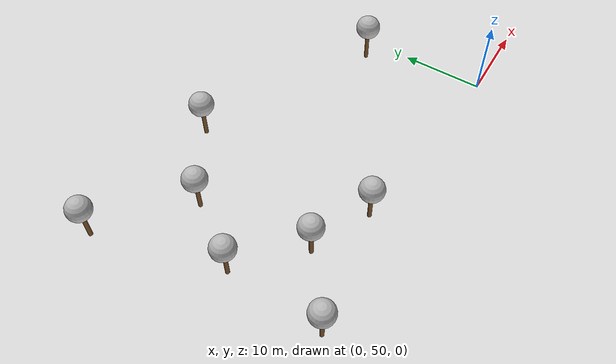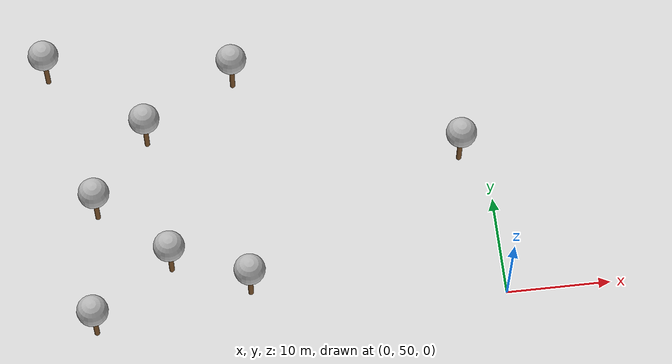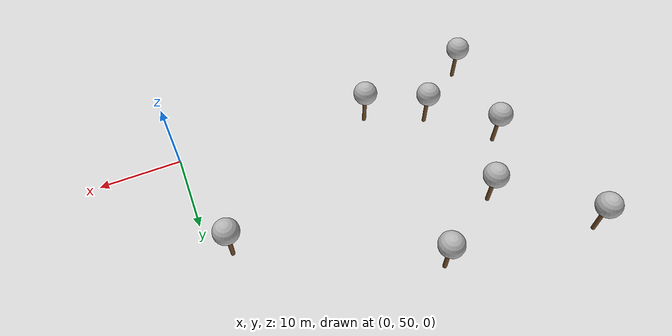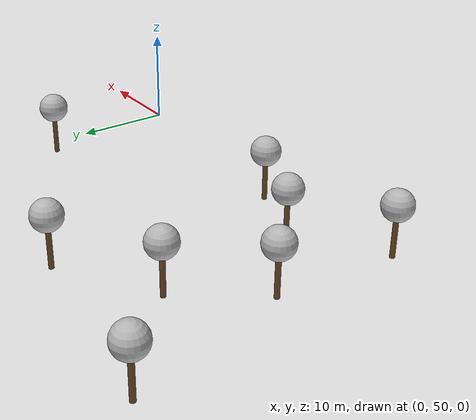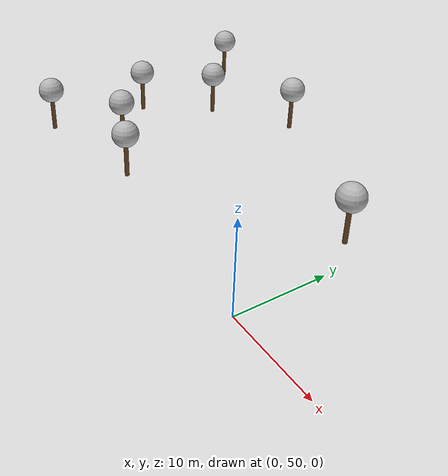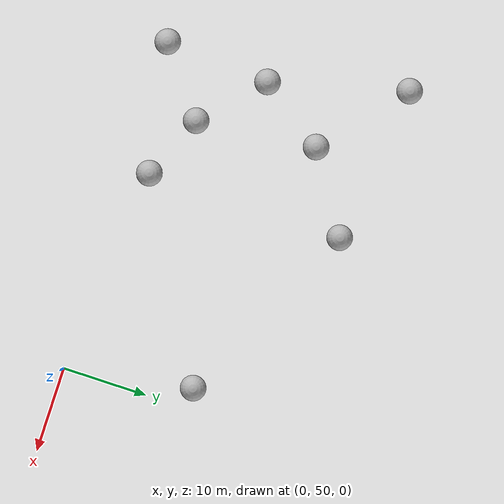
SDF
<sdf version="1.7">
 <world name="default">
  <model name="tree_simple_0_clone_0">
   <static>1</static>
   <link name="link">
    <pose>0 0 0.1 0 -0 0</pose>
    <inertial>
     <mass>666</mass>
     <inertia>
      <ixx>0.0861167</ixx>
      <ixy>0</ixy>
      <ixz>0</ixz>
      <iyy>0.0861167</iyy>
      <iyz>0</iyz>
      <izz>0.0861167</izz>
     </inertia>
    </inertial>
    <collision name="collision_trunk">
     <pose>0 0 2 0 -0 0</pose>
     <geometry><cylinder><radius>0.25</radius><length>4</length></cylinder></geometry>
     <surface>
      <contact>
       <poissons_ratio>0.347</poissons_ratio>
       <elastic_modulus>8.8e+09</elastic_modulus>
       <ode><kp>100000</kp><kd>100</kd><max_vel>100</max_vel><min_depth>0.001</min_depth></ode>
      </contact>
      <friction>
       <torsional>
        <coefficient>1</coefficient>
        <use_patch_radius>0</use_patch_radius>
        <surface_radius>0.01</surface_radius>
       </torsional>
      </friction>
     </surface>
    </collision>
    <collision name="collision_treetop">
     <pose>0 0 5.2 0 -0 0</pose>
     <geometry><sphere><radius>1.5</radius></sphere></geometry>
     <surface>
      <contact>
       <poissons_ratio>0.347</poissons_ratio>
       <elastic_modulus>8.8e+09</elastic_modulus>
       <ode><kp>100000</kp><kd>100</kd><max_vel>100</max_vel><min_depth>0.001</min_depth></ode>
      </contact>
      <friction>
       <torsional>
        <coefficient>1</coefficient>
        <use_patch_radius>0</use_patch_radius>
        <surface_radius>0.01</surface_radius>
       </torsional>
      </friction>
     </surface>
    </collision>
    <visual name="trunk">
     <pose>0 0 2 0 -0 0</pose>
     <geometry><cylinder><radius>0.25</radius><length>4</length></cylinder></geometry>
     <material>
      <script>
       <uri>model://tree_simple/scripts</uri>
       <uri>model://tree_simple/materials/textures</uri>
       <name>TreeSimple/Trunk</name>
      </script>
     </material>
    </visual>
    <visual name="treetop">
     <pose>0 0 5.2 0 -0 0</pose>
     <geometry><sphere><radius>1.5</radius></sphere></geometry>
     <material>
      <script>
       <uri>model://tree_simple/scripts</uri>
       <uri>model://tree_simple/materials/textures</uri>
       <name>TreeSimple/Treetop</name>
      </script>
     </material>
    </visual>
   </link>
   <pose>-2.64272 64.897 0 0 -0 0</pose>
  </model>
  <model name="tree_simple_0_clone_0_clone_clone">
   <static>1</static>
   <link name="link">
    <pose>0 0 0.1 0 -0 0</pose>
    <inertial>
     <mass>666</mass>
     <inertia>
      <ixx>0.0861167</ixx>
      <ixy>0</ixy>
      <ixz>0</ixz>
      <iyy>0.0861167</iyy>
      <iyz>0</iyz>
      <izz>0.0861167</izz>
     </inertia>
    </inertial>
    <collision name="collision_trunk">
     <pose>0 0 2 0 -0 0</pose>
     <geometry><cylinder><radius>0.25</radius><length>4</length></cylinder></geometry>
     <surface>
      <contact>
       <poissons_ratio>0.347</poissons_ratio>
       <elastic_modulus>8.8e+09</elastic_modulus>
       <ode><kp>100000</kp><kd>100</kd><max_vel>100</max_vel><min_depth>0.001</min_depth></ode>
      </contact>
      <friction>
       <torsional>
        <coefficient>1</coefficient>
        <use_patch_radius>0</use_patch_radius>
        <surface_radius>0.01</surface_radius>
       </torsional>
      </friction>
     </surface>
    </collision>
    <collision name="collision_treetop">
     <pose>0 0 5.2 0 -0 0</pose>
     <geometry><sphere><radius>1.5</radius></sphere></geometry>
     <surface>
      <contact>
       <poissons_ratio>0.347</poissons_ratio>
       <elastic_modulus>8.8e+09</elastic_modulus>
       <ode><kp>100000</kp><kd>100</kd><max_vel>100</max_vel><min_depth>0.001</min_depth></ode>
      </contact>
      <friction>
       <torsional>
        <coefficient>1</coefficient>
        <use_patch_radius>0</use_patch_radius>
        <surface_radius>0.01</surface_radius>
       </torsional>
      </friction>
     </surface>
    </collision>
    <visual name="trunk">
     <pose>0 0 2 0 -0 0</pose>
     <geometry><cylinder><radius>0.25</radius><length>4</length></cylinder></geometry>
     <material>
      <script>
       <uri>model://tree_simple/scripts</uri>
       <uri>model://tree_simple/materials/textures</uri>
       <name>TreeSimple/Trunk</name>
      </script>
     </material>
    </visual>
    <visual name="treetop">
     <pose>0 0 5.2 0 -0 0</pose>
     <geometry><sphere><radius>1.5</radius></sphere></geometry>
     <material>
      <script>
       <uri>model://tree_simple/scripts</uri>
       <uri>model://tree_simple/materials/textures</uri>
       <name>TreeSimple/Treetop</name>
      </script>
     </material>
    </visual>
   </link>
   <pose>-38.4069 62.1845 0 0 -0 0</pose>
  </model>
  <model name="tree_simple_0_clone_0_clone_clone_8">
   <static>1</static>
   <link name="link">
    <pose>0 0 0.1 0 -0 0</pose>
    <inertial>
     <mass>666</mass>
     <inertia>
      <ixx>0.0861167</ixx>
      <ixy>0</ixy>
      <ixz>0</ixz>
      <iyy>0.0861167</iyy>
      <iyz>0</iyz>
      <izz>0.0861167</izz>
     </inertia>
    </inertial>
    <collision name="collision_trunk">
     <pose>0 0 2 0 -0 0</pose>
     <geometry><cylinder><radius>0.25</radius><length>4</length></cylinder></geometry>
     <surface>
      <contact>
       <poissons_ratio>0.347</poissons_ratio>
       <elastic_modulus>8.8e+09</elastic_modulus>
       <ode><kp>100000</kp><kd>100</kd><max_vel>100</max_vel><min_depth>0.001</min_depth></ode>
      </contact>
      <friction>
       <torsional>
        <coefficient>1</coefficient>
        <use_patch_radius>0</use_patch_radius>
        <surface_radius>0.01</surface_radius>
       </torsional>
      </friction>
     </surface>
    </collision>
    <collision name="collision_treetop">
     <pose>0 0 5.2 0 -0 0</pose>
     <geometry><sphere><radius>1.5</radius></sphere></geometry>
     <surface>
      <contact>
       <poissons_ratio>0.347</poissons_ratio>
       <elastic_modulus>8.8e+09</elastic_modulus>
       <ode><kp>100000</kp><kd>100</kd><max_vel>100</max_vel><min_depth>0.001</min_depth></ode>
      </contact>
      <friction>
       <torsional>
        <coefficient>1</coefficient>
        <use_patch_radius>0</use_patch_radius>
        <surface_radius>0.01</surface_radius>
       </torsional>
      </friction>
     </surface>
    </collision>
    <visual name="trunk">
     <pose>0 0 2 0 -0 0</pose>
     <geometry><cylinder><radius>0.25</radius><length>4</length></cylinder></geometry>
     <material>
      <script>
       <uri>model://tree_simple/scripts</uri>
       <uri>model://tree_simple/materials/textures</uri>
       <name>TreeSimple/Trunk</name>
      </script>
     </material>
    </visual>
    <visual name="treetop">
     <pose>0 0 5.2 0 -0 0</pose>
     <geometry><sphere><radius>1.5</radius></sphere></geometry>
     <material>
      <script>
       <uri>model://tree_simple/scripts</uri>
       <uri>model://tree_simple/materials/textures</uri>
       <name>TreeSimple/Treetop</name>
      </script>
     </material>
    </visual>
   </link>
   <pose>-31.695 55.8135 0 0 -0 0</pose>
  </model>
  <model name="tree_simple_0_clone_0_clone_clone_10">
   <static>1</static>
   <link name="link">
    <pose>0 0 0.1 0 -0 0</pose>
    <inertial>
     <mass>666</mass>
     <inertia>
      <ixx>0.0861167</ixx>
      <ixy>0</ixy>
      <ixz>0</ixz>
      <iyy>0.0861167</iyy>
      <iyz>0</iyz>
      <izz>0.0861167</izz>
     </inertia>
    </inertial>
    <collision name="collision_trunk">
     <pose>0 0 2 0 -0 0</pose>
     <geometry><cylinder><radius>0.25</radius><length>4</length></cylinder></geometry>
     <surface>
      <contact>
       <poissons_ratio>0.347</poissons_ratio>
       <elastic_modulus>8.8e+09</elastic_modulus>
       <ode><kp>100000</kp><kd>100</kd><max_vel>100</max_vel><min_depth>0.001</min_depth></ode>
      </contact>
      <friction>
       <torsional>
        <coefficient>1</coefficient>
        <use_patch_radius>0</use_patch_radius>
        <surface_radius>0.01</surface_radius>
       </torsional>
      </friction>
     </surface>
    </collision>
    <collision name="collision_treetop">
     <pose>0 0 5.2 0 -0 0</pose>
     <geometry><sphere><radius>1.5</radius></sphere></geometry>
     <surface>
      <contact>
       <poissons_ratio>0.347</poissons_ratio>
       <elastic_modulus>8.8e+09</elastic_modulus>
       <ode><kp>100000</kp><kd>100</kd><max_vel>100</max_vel><min_depth>0.001</min_depth></ode>
      </contact>
      <friction>
       <torsional>
        <coefficient>1</coefficient>
        <use_patch_radius>0</use_patch_radius>
        <surface_radius>0.01</surface_radius>
       </torsional>
      </friction>
     </surface>
    </collision>
    <visual name="trunk">
     <pose>0 0 2 0 -0 0</pose>
     <geometry><cylinder><radius>0.25</radius><length>4</length></cylinder></geometry>
     <material>
      <script>
       <uri>model://tree_simple/scripts</uri>
       <uri>model://tree_simple/materials/textures</uri>
       <name>TreeSimple/Trunk</name>
      </script>
     </material>
    </visual>
    <visual name="treetop">
     <pose>0 0 5.2 0 -0 0</pose>
     <geometry><sphere><radius>1.5</radius></sphere></geometry>
     <material>
      <script>
       <uri>model://tree_simple/scripts</uri>
       <uri>model://tree_simple/materials/textures</uri>
       <name>TreeSimple/Treetop</name>
      </script>
     </material>
    </visual>
   </link>
   <pose>-33.0567 69.7272 0 0 -0 0</pose>
  </model>
  <model name="tree_simple_0_clone_0_clone_clone_11">
   <static>1</static>
   <link name="link">
    <pose>0 0 0.1 0 -0 0</pose>
    <inertial>
     <mass>666</mass>
     <inertia>
      <ixx>0.0861167</ixx>
      <ixy>0</ixy>
      <ixz>0</ixz>
      <iyy>0.0861167</iyy>
      <iyz>0</iyz>
      <izz>0.0861167</izz>
     </inertia>
    </inertial>
    <collision name="collision_trunk">
     <pose>0 0 2 0 -0 0</pose>
     <geometry><cylinder><radius>0.25</radius><length>4</length></cylinder></geometry>
     <surface>
      <contact>
       <poissons_ratio>0.347</poissons_ratio>
       <elastic_modulus>8.8e+09</elastic_modulus>
       <ode><kp>100000</kp><kd>100</kd><max_vel>100</max_vel><min_depth>0.001</min_depth></ode>
      </contact>
      <friction>
       <torsional>
        <coefficient>1</coefficient>
        <use_patch_radius>0</use_patch_radius>
        <surface_radius>0.01</surface_radius>
       </torsional>
      </friction>
     </surface>
    </collision>
    <collision name="collision_treetop">
     <pose>0 0 5.2 0 -0 0</pose>
     <geometry><sphere><radius>1.5</radius></sphere></geometry>
     <surface>
      <contact>
       <poissons_ratio>0.347</poissons_ratio>
       <elastic_modulus>8.8e+09</elastic_modulus>
       <ode><kp>100000</kp><kd>100</kd><max_vel>100</max_vel><min_depth>0.001</min_depth></ode>
      </contact>
      <friction>
       <torsional>
        <coefficient>1</coefficient>
        <use_patch_radius>0</use_patch_radius>
        <surface_radius>0.01</surface_radius>
       </torsional>
      </friction>
     </surface>
    </collision>
    <visual name="trunk">
     <pose>0 0 2 0 -0 0</pose>
     <geometry><cylinder><radius>0.25</radius><length>4</length></cylinder></geometry>
     <material>
      <script>
       <uri>model://tree_simple/scripts</uri>
       <uri>model://tree_simple/materials/textures</uri>
       <name>TreeSimple/Trunk</name>
      </script>
     </material>
    </visual>
    <visual name="treetop">
     <pose>0 0 5.2 0 -0 0</pose>
     <geometry><sphere><radius>1.5</radius></sphere></geometry>
     <material>
      <script>
       <uri>model://tree_simple/scripts</uri>
       <uri>model://tree_simple/materials/textures</uri>
       <name>TreeSimple/Treetop</name>
      </script>
     </material>
    </visual>
   </link>
   <pose>-24.0671 75.4676 0 0 -0 0</pose>
  </model>
  <model name="tree_simple_0_clone_0_clone_clone_12">
   <static>1</static>
   <link name="link">
    <pose>0 0 0.1 0 -0 0</pose>
    <inertial>
     <mass>666</mass>
     <inertia>
      <ixx>0.0861167</ixx>
      <ixy>0</ixy>
      <ixz>0</ixz>
      <iyy>0.0861167</iyy>
      <iyz>0</iyz>
      <izz>0.0861167</izz>
     </inertia>
    </inertial>
    <collision name="collision_trunk">
     <pose>0 0 2 0 -0 0</pose>
     <geometry><cylinder><radius>0.25</radius><length>4</length></cylinder></geometry>
     <surface>
      <contact>
       <poissons_ratio>0.347</poissons_ratio>
       <elastic_modulus>8.8e+09</elastic_modulus>
       <ode><kp>100000</kp><kd>100</kd><max_vel>100</max_vel><min_depth>0.001</min_depth></ode>
      </contact>
      <friction>
       <torsional>
        <coefficient>1</coefficient>
        <use_patch_radius>0</use_patch_radius>
        <surface_radius>0.01</surface_radius>
       </torsional>
      </friction>
     </surface>
    </collision>
    <collision name="collision_treetop">
     <pose>0 0 5.2 0 -0 0</pose>
     <geometry><sphere><radius>1.5</radius></sphere></geometry>
     <surface>
      <contact>
       <poissons_ratio>0.347</poissons_ratio>
       <elastic_modulus>8.8e+09</elastic_modulus>
       <ode><kp>100000</kp><kd>100</kd><max_vel>100</max_vel><min_depth>0.001</min_depth></ode>
      </contact>
      <friction>
       <torsional>
        <coefficient>1</coefficient>
        <use_patch_radius>0</use_patch_radius>
        <surface_radius>0.01</surface_radius>
       </torsional>
      </friction>
     </surface>
    </collision>
    <visual name="trunk">
     <pose>0 0 2 0 -0 0</pose>
     <geometry><cylinder><radius>0.25</radius><length>4</length></cylinder></geometry>
     <material>
      <script>
       <uri>model://tree_simple/scripts</uri>
       <uri>model://tree_simple/materials/textures</uri>
       <name>TreeSimple/Trunk</name>
      </script>
     </material>
    </visual>
    <visual name="treetop">
     <pose>0 0 5.2 0 -0 0</pose>
     <geometry><sphere><radius>1.5</radius></sphere></geometry>
     <material>
      <script>
       <uri>model://tree_simple/scripts</uri>
       <uri>model://tree_simple/materials/textures</uri>
       <name>TreeSimple/Treetop</name>
      </script>
     </material>
    </visual>
   </link>
   <pose>-24.3636 52.5973 0 0 -0 0</pose>
  </model>
  <model name="tree_simple_0_clone_0_clone_clone_11_clone">
   <static>1</static>
   <link name="link">
    <pose>0 0 0.1 0 -0 0</pose>
    <inertial>
     <mass>666</mass>
     <inertia>
      <ixx>0.0861167</ixx>
      <ixy>0</ixy>
      <ixz>0</ixz>
      <iyy>0.0861167</iyy>
      <iyz>0</iyz>
      <izz>0.0861167</izz>
     </inertia>
    </inertial>
    <collision name="collision_trunk">
     <pose>0 0 2 0 -0 0</pose>
     <geometry><cylinder><radius>0.25</radius><length>4</length></cylinder></geometry>
     <surface>
      <contact>
       <poissons_ratio>0.347</poissons_ratio>
       <elastic_modulus>8.8e+09</elastic_modulus>
       <ode><kp>100000</kp><kd>100</kd><max_vel>100</max_vel><min_depth>0.001</min_depth></ode>
      </contact>
      <friction>
       <torsional>
        <coefficient>1</coefficient>
        <use_patch_radius>0</use_patch_radius>
        <surface_radius>0.01</surface_radius>
       </torsional>
      </friction>
     </surface>
    </collision>
    <collision name="collision_treetop">
     <pose>0 0 5.2 0 -0 0</pose>
     <geometry><sphere><radius>1.5</radius></sphere></geometry>
     <surface>
      <contact>
       <poissons_ratio>0.347</poissons_ratio>
       <elastic_modulus>8.8e+09</elastic_modulus>
       <ode><kp>100000</kp><kd>100</kd><max_vel>100</max_vel><min_depth>0.001</min_depth></ode>
      </contact>
      <friction>
       <torsional>
        <coefficient>1</coefficient>
        <use_patch_radius>0</use_patch_radius>
        <surface_radius>0.01</surface_radius>
       </torsional>
      </friction>
     </surface>
    </collision>
    <visual name="trunk">
     <pose>0 0 2 0 -0 0</pose>
     <geometry><cylinder><radius>0.25</radius><length>4</length></cylinder></geometry>
     <material>
      <script>
       <uri>model://tree_simple/scripts</uri>
       <uri>model://tree_simple/materials/textures</uri>
       <name>TreeSimple/Trunk</name>
      </script>
     </material>
    </visual>
    <visual name="treetop">
     <pose>0 0 5.2 0 -0 0</pose>
     <geometry><sphere><radius>1.5</radius></sphere></geometry>
     <material>
      <script>
       <uri>model://tree_simple/scripts</uri>
       <uri>model://tree_simple/materials/textures</uri>
       <name>TreeSimple/Treetop</name>
      </script>
     </material>
    </visual>
   </link>
   <pose>-39.2609 49.961 0 0 -0 0</pose>
  </model>
  <model name="tree_simple_0_clone_0_clone_clone_11_clone_0">
   <static>1</static>
   <link name="link">
    <pose>0 0 0.1 0 -0 0</pose>
    <inertial>
     <mass>666</mass>
     <inertia>
      <ixx>0.0861167</ixx>
      <ixy>0</ixy>
      <ixz>0</ixz>
      <iyy>0.0861167</iyy>
      <iyz>0</iyz>
      <izz>0.0861167</izz>
     </inertia>
    </inertial>
    <collision name="collision_trunk">
     <pose>0 0 2 0 -0 0</pose>
     <geometry><cylinder><radius>0.25</radius><length>4</length></cylinder></geometry>
     <surface>
      <contact>
       <poissons_ratio>0.347</poissons_ratio>
       <elastic_modulus>8.8e+09</elastic_modulus>
       <ode><kp>100000</kp><kd>100</kd><max_vel>100</max_vel><min_depth>0.001</min_depth></ode>
      </contact>
      <friction>
       <torsional>
        <coefficient>1</coefficient>
        <use_patch_radius>0</use_patch_radius>
        <surface_radius>0.01</surface_radius>
       </torsional>
      </friction>
     </surface>
    </collision>
    <collision name="collision_treetop">
     <pose>0 0 5.2 0 -0 0</pose>
     <geometry><sphere><radius>1.5</radius></sphere></geometry>
     <surface>
      <contact>
       <poissons_ratio>0.347</poissons_ratio>
       <elastic_modulus>8.8e+09</elastic_modulus>
       <ode><kp>100000</kp><kd>100</kd><max_vel>100</max_vel><min_depth>0.001</min_depth></ode>
      </contact>
      <friction>
       <torsional>
        <coefficient>1</coefficient>
        <use_patch_radius>0</use_patch_radius>
        <surface_radius>0.01</surface_radius>
       </torsional>
      </friction>
     </surface>
    </collision>
    <visual name="trunk">
     <pose>0 0 2 0 -0 0</pose>
     <geometry><cylinder><radius>0.25</radius><length>4</length></cylinder></geometry>
     <material>
      <script>
       <uri>model://tree_simple/scripts</uri>
       <uri>model://tree_simple/materials/textures</uri>
       <name>TreeSimple/Trunk</name>
      </script>
     </material>
    </visual>
    <visual name="treetop">
     <pose>0 0 5.2 0 -0 0</pose>
     <geometry><sphere><radius>1.5</radius></sphere></geometry>
     <material>
      <script>
       <uri>model://tree_simple/scripts</uri>
       <uri>model://tree_simple/materials/textures</uri>
       <name>TreeSimple/Treetop</name>
      </script>
     </material>
    </visual>
   </link>
   <pose>-42.3971 77.8902 0 0 -0 0</pose>
  </model>
 </world>
</sdf>
